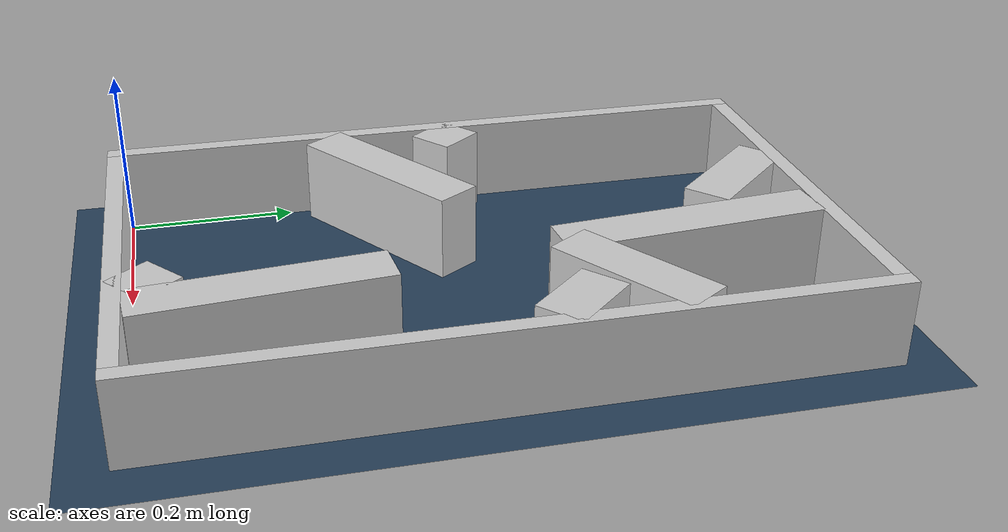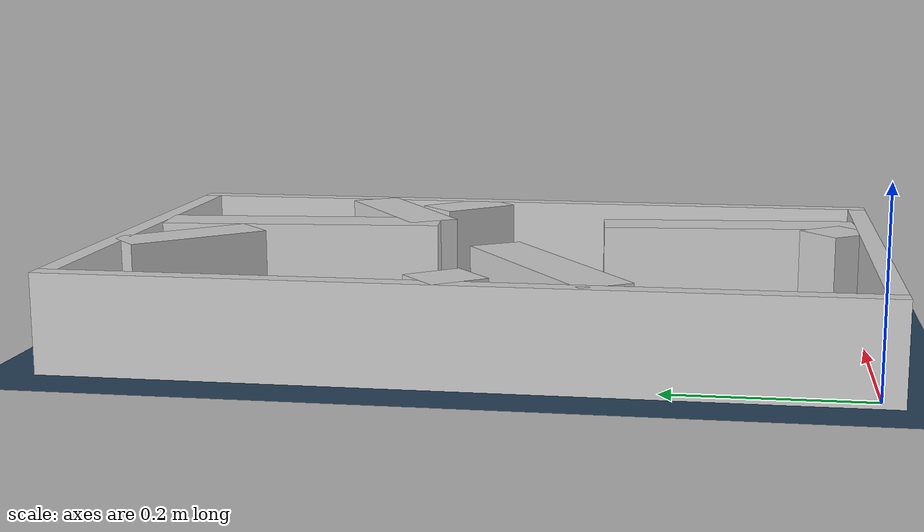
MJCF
<?xml version="1.0" ?>
<mujoco model="generated_real_template">
  <compiler angle="degree"/>
  <option timestep="0.002" integrator="implicitfast" iterations="100" cone="elliptic"/>
  <default>
    <geom density="1"/>
  </default>
  <asset>
    <texture builtin="gradient" height="3072" rgb1="0.3 0.5 0.7" rgb2="0 0 0" type="skybox" width="512"/>
    <texture builtin="checker" height="300" mark="edge" markrgb="0.8 0.8 0.8" name="groundplane" rgb1="0.2 0.3 0.4" rgb2="0.1 0.2 0.3" type="2d" width="300"/>
    <material name="groundplane" reflectance="0.2" texrepeat="5 5" texture="groundplane" texuniform="true"/>
  </asset>
  <worldbody>
    <light dir="0 0 -1" directional="true" pos="0 0 1.5"/>
    <geom name="floor" type="plane" condim="4" friction="0.5 0.005 0.001" material="groundplane" size="0 0 0.05"/>
    <body name="walls">
      <geom name="wall_boundary_left" type="box" condim="4" friction="1.0 0.005 0.0001" rgba="0.8 0.8 0.8 1" pos="-0.010000 0.387500 0.050000" euler="0 0 0.000000" size="0.010000 0.407500 0.050000"/>
      <geom name="wall_boundary_right" type="box" condim="4" friction="1.0 0.005 0.0001" rgba="0.8 0.8 0.8 1" pos="0.500000 0.387500 0.050000" euler="0 0 0.000000" size="0.010000 0.407500 0.050000"/>
      <geom name="wall_boundary_bottom" type="box" condim="4" friction="1.0 0.005 0.0001" rgba="0.8 0.8 0.8 1" pos="0.245000 -0.010000 0.050000" euler="0 0 0.000000" size="0.245000 0.010000 0.050000"/>
      <geom name="wall_boundary_top" type="box" condim="4" friction="1.0 0.005 0.0001" rgba="0.8 0.8 0.8 1" pos="0.245000 0.785000 0.050000" euler="0 0 0.000000" size="0.245000 0.010000 0.050000"/>
      <geom name="wall_inner_1_1" type="box" condim="4" friction="1.0 0.005 0.0001" rgba="0.8 0.8 0.8 1" pos="0.360578 0.139375 0.050000" euler="0 0 95.074183" size="0.139923 0.028500 0.050000"/>
      <geom name="wall_inner_1_2" type="box" condim="4" friction="1.0 0.005 0.0001" rgba="0.8 0.8 0.8 1" pos="0.317947 0.619487 0.050000" euler="0 0 95.074183" size="0.156125 0.028500 0.050000"/>
      <geom name="wall_inner_2_1" type="box" condim="4" friction="1.0 0.005 0.0001" rgba="0.8 0.8 0.8 1" pos="0.327880 0.022220 0.050000" euler="0 0 128.978230" size="0.028583 0.028500 0.050000"/>
      <geom name="wall_inner_2_2" type="box" condim="4" friction="1.0 0.005 0.0001" rgba="0.8 0.8 0.8 1" pos="0.021379 0.401012 0.050000" euler="0 0 128.978230" size="0.030559 0.028500 0.050000"/>
      <geom name="wall_inner_3_1" type="box" condim="4" friction="1.0 0.005 0.0001" rgba="0.8 0.8 0.8 1" pos="0.412783 0.523352 0.050000" euler="0 0 -146.260156" size="0.092858 0.028500 0.050000"/>
      <geom name="wall_inner_3_2" type="box" condim="4" friction="1.0 0.005 0.0001" rgba="0.8 0.8 0.8 1" pos="0.099700 0.314238 0.050000" euler="0 0 -146.260156" size="0.119894 0.028500 0.050000"/>
      <geom name="wall_inner_4_1" type="box" condim="4" friction="1.0 0.005 0.0001" rgba="0.8 0.8 0.8 1" pos="0.211604 0.718085 0.050000" euler="0 0 -47.257575" size="0.077498 0.028500 0.050000"/>
      <geom name="wall_inner_4_2" type="box" condim="4" friction="1.0 0.005 0.0001" rgba="0.8 0.8 0.8 1" pos="0.457686 0.451804 0.050000" euler="0 0 -47.257575" size="0.046239 0.028500 0.050000"/>
    </body>
  </worldbody>
</mujoco>
